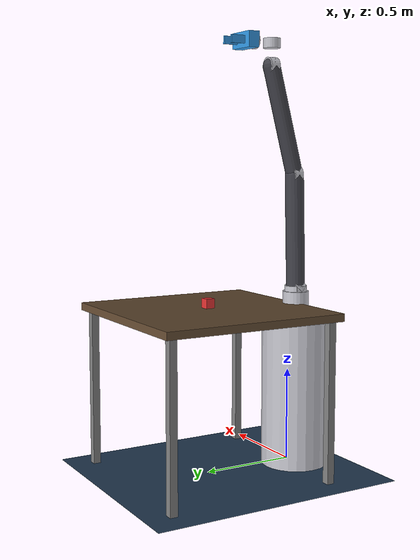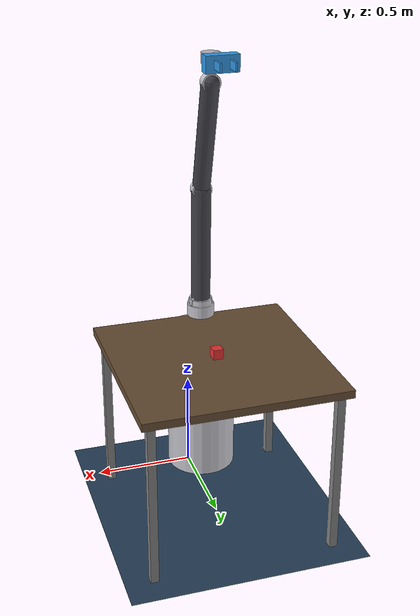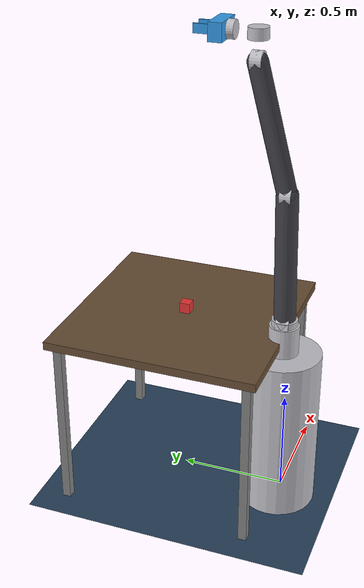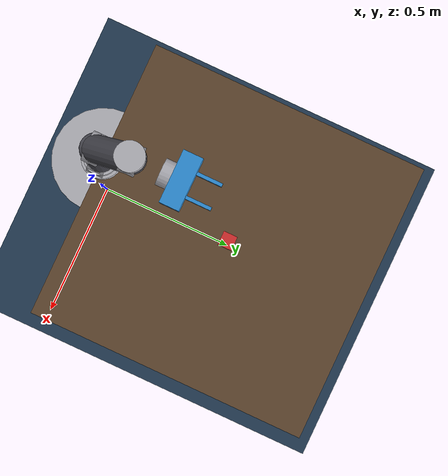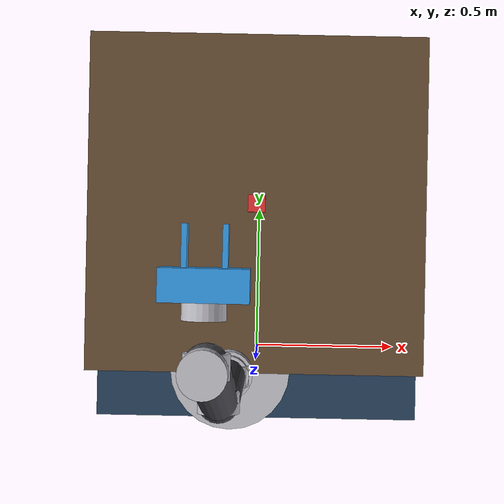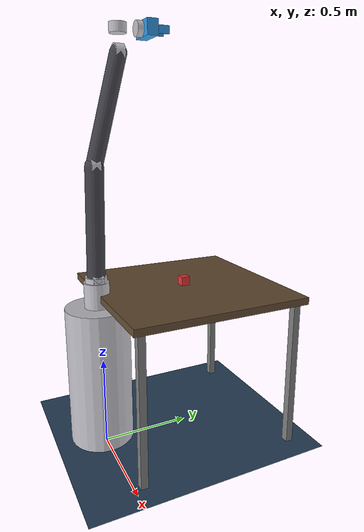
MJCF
<mujoco model="scene_table">
  <compiler angle="radian" coordinate="local" autolimits="true" meshdir="meshes"/>

  <option timestep="0.002" gravity="0 0 -9.81"/>

  <visual>
    <headlight diffuse="0.6 0.6 0.6" ambient="0.3 0.3 0.3" specular="0 0 0"/>
    <rgba haze="0.15 0.18 0.22 1"/>
    <global azimuth="120" elevation="-20"/>
  </visual>

  <asset>
    <texture type="skybox" builtin="gradient" rgb1="0.5 0.6 0.7" rgb2="0 0 0" width="256" height="256"/>
    <texture name="floor_tex" type="2d" builtin="checker" width="512" height="512" rgb1="0.2 0.3 0.4" rgb2="0.1 0.2 0.3"/>
    <material name="floor_mat" texture="floor_tex" texrepeat="8 8" reflectance="0.2"/>
    <material name="table_mat" rgba="0.4 0.3 0.2 1"/>
  </asset>

  <default>
    <joint damping="0.5" frictionloss="0.01"/>
    <geom contype="1" conaffinity="1"/>
  </default>

  <!-- 机械臂本体（torque 版本：臂关节 motor + 夹爪 position） -->
  <include file="ur5e_gripper_torque.xml"/>

  <worldbody>
    <light name="spot" pos="0 0 3" dir="0 0 -1" directional="true"/>
    <geom name="floor" type="plane" size="5 5 0.1" material="floor_mat"/>

    <!-- 工作台：桌面表面 z=0.67985，承接机械臂 0.1m 底座 -->
    <body name="table" pos="0 0.5 0">
      <geom name="table_top" type="box" pos="0 0 0.85985" size="0.5 0.5 0.02" material="table_mat"/>
      <geom name="table_leg1" type="box" pos="0.45 0.45 0.419925" size="0.02 0.02 0.419925"/>
      <geom name="table_leg2" type="box" pos="-0.45 0.45 0.419925" size="0.02 0.02 0.419925"/>
      <geom name="table_leg3" type="box" pos="0.45 -0.45 0.419925" size="0.02 0.02 0.419925"/>
      <geom name="table_leg4" type="box" pos="-0.45 -0.45 0.419925" size="0.02 0.02 0.419925"/>
    </body>

    <!-- 可抓取物体（任务可动态生成/重置），放在新桌面 z=0.67985 上 -->
    <body name="object" pos="0 0.5 0.90485">
      <freejoint/>
      <geom name="object" type="box" size="0.025 0.025 0.025" rgba="0.9 0.2 0.2 1" mass="0.5"/>
    </body>
  </worldbody>
</mujoco>

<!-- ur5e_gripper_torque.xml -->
<mujoco model="ur5e_gripper">
  <compiler angle="radian" coordinate="local" autolimits="true"/>

  <asset>
    <material name="arm_mat"  rgba="0.75 0.75 0.78 1"/>
    <material name="link_mat" rgba="0.25 0.25 0.28 1"/>
    <material name="grip_mat" rgba="0.2 0.6 0.9 1"/>
  </asset>

  <default>
    <joint damping="0.5" frictionloss="0.01"/>
    <geom contype="1" conaffinity="1"/>
  </default>

  <worldbody>
    <!-- 机械臂底座 -->
    <body name="base" pos="-0.0723956 0 0.7798497">
      <geom name="base" type="cylinder" size="0.07 0.08175" pos="0 0 0.08175" material="arm_mat" contype="0" conaffinity="0"/>
      <!-- 安装底座：高 0.8m，从 base 原点向下延伸，底部落在桌面 -->
      <geom name="pedestal" type="cylinder" size="0.18 0.4" pos="0 0 -0.38" material="arm_mat" contype="0" conaffinity="0"/>

      <!-- ===== 关节1: shoulder_pan  d1=0.1635 ===== (a0=0,α0=0 省略 offset1) -->
      <body name="shoulder_Link" pos="0 0 0.1635">
        <inertial pos="0 0 0" mass="3.9912" diaginertia="0.01 0.02 0.02"/>
        <joint name="shoulder_pan_joint" type="hinge" axis="0 0 -1" range="-6.28 6.28"/>
        <geom name="shoulder_pan" type="cylinder" size="0.06 0.03" material="arm_mat"/>

        <!-- ===== 关节2: shoulder_lift ===== -->
        <body name="upper_arm_Lift" pos="0 0 0" quat="0.49998 -0.5 -0.5 -0.500002">
          <inertial pos="0 0 0" mass="13.9447" diaginertia="0.04 0.04 0.01"/>
          <joint name="shoulder_lift" type="hinge" axis="0 0 1" range="-6.28 6.28"/>
          <geom name="shoulder_lift" type="cylinder" size="0.06 0.03" material="arm_mat"/>
          <!-- 补充：大臂连杆几何，连接 upper_arm_Lift 原点 -> forearm_Link 原点 -->
          <geom name="upper_arm" type="capsule" fromto="0 0 0 0.6225 0 0.0155" size="0.05" material="link_mat"/>

          <!-- ===== 关节3: elbow  d3=0.0155 ===== -->
          <body name="forearm_Link" pos="0.6225 0 0.0155">
            <inertial pos="0 0 0" mass="3.6632" diaginertia="0.02 0.02 0.005"/>
            <joint name="elbow_joint" type="hinge" axis="0 0 1" range="-3.14 3.14"/>
            <geom name="elbow" type="cylinder" size="0.05 0.025" material="arm_mat"/>
            <!-- 补充：小臂连杆几何，连接 forearm_Link 原点 -> wrist_1_Link 原点 -->
            <geom name="forearm" type="capsule" fromto="0 0 0 0.558 0 0.149" size="0.045" material="link_mat"/>

            <!-- ===== 关节4: wrist_1  d4=0.149 ===== -->
            <body name="wrist_1_Link" pos="0.558 0 0.149" quat="0.707105 1.18758e-05 1.18759e-05 0.707108">
              <inertial pos="0 0 0" mass="1.226" diaginertia="0.005 0.005 0.002"/>
              <joint name="wrist_1_joint" type="hinge" axis="0 0 1" range="-6.28 6.28"/>
              <geom name="wrist_1" type="cylinder" size="0.045 0.025" material="arm_mat"/>

              <!-- ===== 关节5: wrist_2  d5=-0.115 ===== -->
              <body name="wrist_2_Link" pos="0 -0.115 0" quat="0.707104 0.707072 0.000768628 -0.000775693">
                <inertial pos="0 0 0" mass="1.1122" diaginertia="0.005 0.005 0.002"/>
                <joint name="wrist_2_joint" type="hinge" axis="0 0 -1" range="-6.28 6.28"/>
                <geom name="wrist_2" type="cylinder" size="0.045 0.025" material="arm_mat"/>

                <!-- ===== 关节6: wrist_3  d6=0.115 ===== -->
                <body name="wrist_3_Link" pos="0.0001986 0.115 0.0047139" quat="0.707494 -0.706719 3.54596e-06 3.54208e-06">
                  <inertial pos="0 0 0" mass="1.6897" diaginertia="0.002 0.002 0.001"/>
                  <joint name="wrist_3_joint" type="hinge" axis="0 0 -1" range="-6.28 6.28"/>
                  <geom name="wrist_3" type="cylinder" size="0.04 0.02" material="arm_mat"/>

                  <!-- 末端执行器参考点 = DH frame 6 原点 (法兰中心) -->
                  <site name="attachment_site" pos="0 0 0" rgba="1 0 0 1"/>
                  <!-- 代码兼容用的末端 site（与 attachment_site 同位置，供 IK/obs 读取） -->
                  <site name="ee_link" pos="0 0 0" size="0.02"/>

                  <body name="tcp_link" quat="1 0 0 0" pos="0 0 0.35">
                    <geom name="tcp_link_geom" type="capsule" fromto="0 0 -0.5 0 0 0.5" size="0.005" rgba="1 0.2 0.2 0" contype="0" conaffinity="0"/>
                  </body>

                  <!-- offset6: a5=0, α5=90° (末端坐标系) -->
                  <body name="ee_off" pos="0 0 0" quat="0 0.7071068 0.7071068 0">
                    <inertial pos="0 0 0" mass="1.5714" diaginertia="0.001 0.001 0.001"/>

                    <!-- ===== 二指平行夹爪 ===== -->
                    <body name="gripper_base" pos="0 0 -0.042">
                      <geom name="gripper_base" type="box" size="0.04 0.08 0.03" pos="0 0 0.00" material="grip_mat"/>
                      <body name="finger_left" pos="0 -0.0160500 -0.0874122">
                        <joint name="finger_left" type="slide" axis="0 1 0" range="0 0.04"/>
                        <geom name="finger_left" type="box" size="0.02 0.005 0.04" pos="0 -0.02 0.02" material="grip_mat"/>
                      </body>
                      <body name="finger_right" pos="0 0.0160500 -0.0874122">
                        <joint name="finger_right" type="slide" axis="0 1 0" range="-0.04 0"/>
                        <geom name="finger_right" type="box" size="0.02 0.005 0.04" pos="0 0.02 0.02" material="grip_mat"/>
                      </body>
                    </body>
                  </body>
                </body>
              </body>
            </body>
          </body>
        </body>
      </body>
    </body>
  </worldbody>

  <!-- 执行器：torque 控制模式（6 个臂关节 motor）+ 夹爪统一 position。
       motor 直接输出力矩（ctrl 单位 Nm），默认 ctrl=0。
       夹爪 position 与 position 版本完全一致，保持双模式共用夹爪接口。 -->
  <actuator>
    <motor joint="shoulder_pan_joint"  name="trq_shoulder_pan_joint"  ctrlrange="-150 150"/>
    <motor joint="shoulder_lift"       name="trq_shoulder_lift"       ctrlrange="-150 150"/>
    <motor joint="elbow_joint"         name="trq_elbow_joint"         ctrlrange="-150 150"/>
    <motor joint="wrist_1_joint"       name="trq_wrist_1_joint"       ctrlrange="-28 28"/>
    <motor joint="wrist_2_joint"       name="trq_wrist_2_joint"       ctrlrange="-28 28"/>
    <motor joint="wrist_3_joint"       name="trq_wrist_3_joint"       ctrlrange="-28 28"/>
    <position joint="finger_left"      name="pos_finger_left"         ctrlrange="0 0.04" forcerange="-40 40" kp="100" kv="10"/>
  </actuator>

  <equality>
    <joint joint1="finger_right" joint2="finger_left" polycoef="0 -1"/>
  </equality>
</mujoco>
